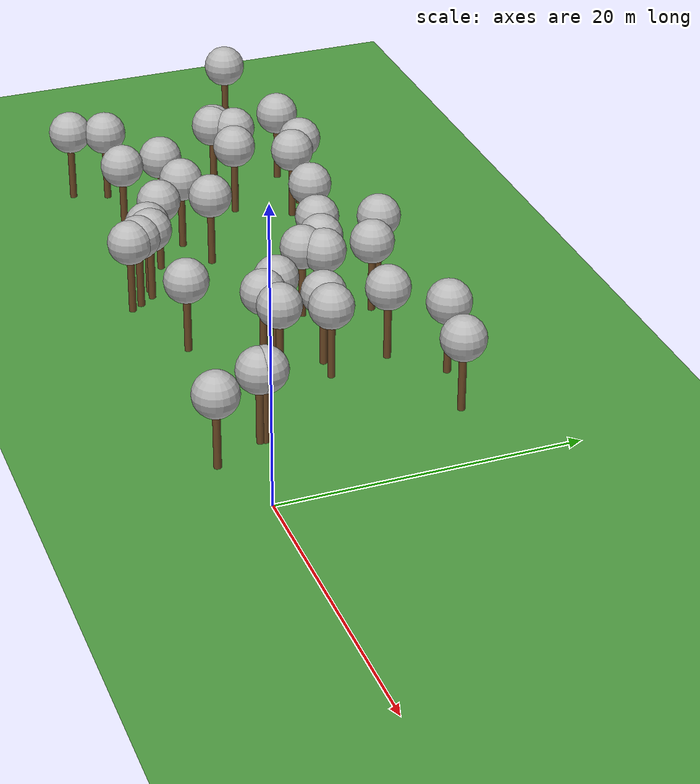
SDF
<sdf version="1.5">
 <world name="default">
  <model name="tree_simple498">
   <static>1</static>
   <link name="link">
    <pose>0 0 0.1 0 -0 0</pose>
    <collision name="collision_trunk">
     <pose>0 0 2 0 -0 0</pose>
     <geometry><cylinder><radius>0.25</radius><length>4</length></cylinder></geometry>
    </collision>
    <collision name="collision_treetop">
     <pose>0 0 5.2 0 -0 0</pose>
     <geometry><sphere><radius>1.5</radius></sphere></geometry>
    </collision>
    <visual name="trunk">
     <pose>0 0 2 0 -0 0</pose>
     <geometry><cylinder><radius>0.25</radius><length>4</length></cylinder></geometry>
     <material>
      <script>
       <uri>model://tree_simple/scripts</uri>
       <uri>model://tree_simple/materials/textures</uri>
       <name>TreeSimple/Trunk</name>
      </script>
     </material>
    </visual>
    <visual name="treetop">
     <pose>0 0 5.2 0 -0 0</pose>
     <geometry><sphere><radius>1.5</radius></sphere></geometry>
     <material>
      <script>
       <uri>model://tree_simple/scripts</uri>
       <uri>model://tree_simple/materials/textures</uri>
       <name>TreeSimple/Treetop</name>
      </script>
     </material>
    </visual>
   </link>
   <pose>-20.062069779 9.09254194943 0 0 -0 0</pose>
  </model>
  <model name="tree_simple488">
   <static>1</static>
   <link name="link">
    <pose>0 0 0.1 0 -0 0</pose>
    <collision name="collision_trunk">
     <pose>0 0 2 0 -0 0</pose>
     <geometry><cylinder><radius>0.25</radius><length>4</length></cylinder></geometry>
    </collision>
    <collision name="collision_treetop">
     <pose>0 0 5.2 0 -0 0</pose>
     <geometry><sphere><radius>1.5</radius></sphere></geometry>
    </collision>
    <visual name="trunk">
     <pose>0 0 2 0 -0 0</pose>
     <geometry><cylinder><radius>0.25</radius><length>4</length></cylinder></geometry>
     <material>
      <script>
       <uri>model://tree_simple/scripts</uri>
       <uri>model://tree_simple/materials/textures</uri>
       <name>TreeSimple/Trunk</name>
      </script>
     </material>
    </visual>
    <visual name="treetop">
     <pose>0 0 5.2 0 -0 0</pose>
     <geometry><sphere><radius>1.5</radius></sphere></geometry>
     <material>
      <script>
       <uri>model://tree_simple/scripts</uri>
       <uri>model://tree_simple/materials/textures</uri>
       <name>TreeSimple/Treetop</name>
      </script>
     </material>
    </visual>
   </link>
   <pose>-13.1215818691 12.435953241 0 0 -0 0</pose>
  </model>
  <model name="tree_simple460">
   <static>1</static>
   <link name="link">
    <pose>0 0 0.1 0 -0 0</pose>
    <collision name="collision_trunk">
     <pose>0 0 2 0 -0 0</pose>
     <geometry><cylinder><radius>0.25</radius><length>4</length></cylinder></geometry>
    </collision>
    <collision name="collision_treetop">
     <pose>0 0 5.2 0 -0 0</pose>
     <geometry><sphere><radius>1.5</radius></sphere></geometry>
    </collision>
    <visual name="trunk">
     <pose>0 0 2 0 -0 0</pose>
     <geometry><cylinder><radius>0.25</radius><length>4</length></cylinder></geometry>
     <material>
      <script>
       <uri>model://tree_simple/scripts</uri>
       <uri>model://tree_simple/materials/textures</uri>
       <name>TreeSimple/Trunk</name>
      </script>
     </material>
    </visual>
    <visual name="treetop">
     <pose>0 0 5.2 0 -0 0</pose>
     <geometry><sphere><radius>1.5</radius></sphere></geometry>
     <material>
      <script>
       <uri>model://tree_simple/scripts</uri>
       <uri>model://tree_simple/materials/textures</uri>
       <name>TreeSimple/Treetop</name>
      </script>
     </material>
    </visual>
   </link>
   <pose>-19.1263542494 10.273291852 0 0 -0 0</pose>
  </model>
  <model name="tree_simple455">
   <static>1</static>
   <link name="link">
    <pose>0 0 0.1 0 -0 0</pose>
    <collision name="collision_trunk">
     <pose>0 0 2 0 -0 0</pose>
     <geometry><cylinder><radius>0.25</radius><length>4</length></cylinder></geometry>
    </collision>
    <collision name="collision_treetop">
     <pose>0 0 5.2 0 -0 0</pose>
     <geometry><sphere><radius>1.5</radius></sphere></geometry>
    </collision>
    <visual name="trunk">
     <pose>0 0 2 0 -0 0</pose>
     <geometry><cylinder><radius>0.25</radius><length>4</length></cylinder></geometry>
     <material>
      <script>
       <uri>model://tree_simple/scripts</uri>
       <uri>model://tree_simple/materials/textures</uri>
       <name>TreeSimple/Trunk</name>
      </script>
     </material>
    </visual>
    <visual name="treetop">
     <pose>0 0 5.2 0 -0 0</pose>
     <geometry><sphere><radius>1.5</radius></sphere></geometry>
     <material>
      <script>
       <uri>model://tree_simple/scripts</uri>
       <uri>model://tree_simple/materials/textures</uri>
       <name>TreeSimple/Treetop</name>
      </script>
     </material>
    </visual>
   </link>
   <pose>-32.1346913749 4.45623468988 0 0 -0 0</pose>
  </model>
  <model name="tree_simple453">
   <static>1</static>
   <link name="link">
    <pose>0 0 0.1 0 -0 0</pose>
    <collision name="collision_trunk">
     <pose>0 0 2 0 -0 0</pose>
     <geometry><cylinder><radius>0.25</radius><length>4</length></cylinder></geometry>
    </collision>
    <collision name="collision_treetop">
     <pose>0 0 5.2 0 -0 0</pose>
     <geometry><sphere><radius>1.5</radius></sphere></geometry>
    </collision>
    <visual name="trunk">
     <pose>0 0 2 0 -0 0</pose>
     <geometry><cylinder><radius>0.25</radius><length>4</length></cylinder></geometry>
     <material>
      <script>
       <uri>model://tree_simple/scripts</uri>
       <uri>model://tree_simple/materials/textures</uri>
       <name>TreeSimple/Trunk</name>
      </script>
     </material>
    </visual>
    <visual name="treetop">
     <pose>0 0 5.2 0 -0 0</pose>
     <geometry><sphere><radius>1.5</radius></sphere></geometry>
     <material>
      <script>
       <uri>model://tree_simple/scripts</uri>
       <uri>model://tree_simple/materials/textures</uri>
       <name>TreeSimple/Treetop</name>
      </script>
     </material>
    </visual>
   </link>
   <pose>-12.135251061 8.19022164755 0 0 -0 0</pose>
  </model>
  <model name="tree_simple448">
   <static>1</static>
   <link name="link">
    <pose>0 0 0.1 0 -0 0</pose>
    <collision name="collision_trunk">
     <pose>0 0 2 0 -0 0</pose>
     <geometry><cylinder><radius>0.25</radius><length>4</length></cylinder></geometry>
    </collision>
    <collision name="collision_treetop">
     <pose>0 0 5.2 0 -0 0</pose>
     <geometry><sphere><radius>1.5</radius></sphere></geometry>
    </collision>
    <visual name="trunk">
     <pose>0 0 2 0 -0 0</pose>
     <geometry><cylinder><radius>0.25</radius><length>4</length></cylinder></geometry>
     <material>
      <script>
       <uri>model://tree_simple/scripts</uri>
       <uri>model://tree_simple/materials/textures</uri>
       <name>TreeSimple/Trunk</name>
      </script>
     </material>
    </visual>
    <visual name="treetop">
     <pose>0 0 5.2 0 -0 0</pose>
     <geometry><sphere><radius>1.5</radius></sphere></geometry>
     <material>
      <script>
       <uri>model://tree_simple/scripts</uri>
       <uri>model://tree_simple/materials/textures</uri>
       <name>TreeSimple/Treetop</name>
      </script>
     </material>
    </visual>
   </link>
   <pose>-24.5519753109 -1.42546954192 0 0 -0 0</pose>
  </model>
  <model name="tree_simple444">
   <static>1</static>
   <link name="link">
    <pose>0 0 0.1 0 -0 0</pose>
    <collision name="collision_trunk">
     <pose>0 0 2 0 -0 0</pose>
     <geometry><cylinder><radius>0.25</radius><length>4</length></cylinder></geometry>
    </collision>
    <collision name="collision_treetop">
     <pose>0 0 5.2 0 -0 0</pose>
     <geometry><sphere><radius>1.5</radius></sphere></geometry>
    </collision>
    <visual name="trunk">
     <pose>0 0 2 0 -0 0</pose>
     <geometry><cylinder><radius>0.25</radius><length>4</length></cylinder></geometry>
     <material>
      <script>
       <uri>model://tree_simple/scripts</uri>
       <uri>model://tree_simple/materials/textures</uri>
       <name>TreeSimple/Trunk</name>
      </script>
     </material>
    </visual>
    <visual name="treetop">
     <pose>0 0 5.2 0 -0 0</pose>
     <geometry><sphere><radius>1.5</radius></sphere></geometry>
     <material>
      <script>
       <uri>model://tree_simple/scripts</uri>
       <uri>model://tree_simple/materials/textures</uri>
       <name>TreeSimple/Treetop</name>
      </script>
     </material>
    </visual>
   </link>
   <pose>-23.7375888222 11.4825776361 0 0 -0 0</pose>
  </model>
  <model name="tree_simple437">
   <static>1</static>
   <link name="link">
    <pose>0 0 0.1 0 -0 0</pose>
    <collision name="collision_trunk">
     <pose>0 0 2 0 -0 0</pose>
     <geometry><cylinder><radius>0.25</radius><length>4</length></cylinder></geometry>
    </collision>
    <collision name="collision_treetop">
     <pose>0 0 5.2 0 -0 0</pose>
     <geometry><sphere><radius>1.5</radius></sphere></geometry>
    </collision>
    <visual name="trunk">
     <pose>0 0 2 0 -0 0</pose>
     <geometry><cylinder><radius>0.25</radius><length>4</length></cylinder></geometry>
     <material>
      <script>
       <uri>model://tree_simple/scripts</uri>
       <uri>model://tree_simple/materials/textures</uri>
       <name>TreeSimple/Trunk</name>
      </script>
     </material>
    </visual>
    <visual name="treetop">
     <pose>0 0 5.2 0 -0 0</pose>
     <geometry><sphere><radius>1.5</radius></sphere></geometry>
     <material>
      <script>
       <uri>model://tree_simple/scripts</uri>
       <uri>model://tree_simple/materials/textures</uri>
       <name>TreeSimple/Treetop</name>
      </script>
     </material>
    </visual>
   </link>
   <pose>-39.7170299969 9.24665194356 0 0 -0 0</pose>
  </model>
  <model name="tree_simple424">
   <static>1</static>
   <link name="link">
    <pose>0 0 0.1 0 -0 0</pose>
    <collision name="collision_trunk">
     <pose>0 0 2 0 -0 0</pose>
     <geometry><cylinder><radius>0.25</radius><length>4</length></cylinder></geometry>
    </collision>
    <collision name="collision_treetop">
     <pose>0 0 5.2 0 -0 0</pose>
     <geometry><sphere><radius>1.5</radius></sphere></geometry>
    </collision>
    <visual name="trunk">
     <pose>0 0 2 0 -0 0</pose>
     <geometry><cylinder><radius>0.25</radius><length>4</length></cylinder></geometry>
     <material>
      <script>
       <uri>model://tree_simple/scripts</uri>
       <uri>model://tree_simple/materials/textures</uri>
       <name>TreeSimple/Trunk</name>
      </script>
     </material>
    </visual>
    <visual name="treetop">
     <pose>0 0 5.2 0 -0 0</pose>
     <geometry><sphere><radius>1.5</radius></sphere></geometry>
     <material>
      <script>
       <uri>model://tree_simple/scripts</uri>
       <uri>model://tree_simple/materials/textures</uri>
       <name>TreeSimple/Treetop</name>
      </script>
     </material>
    </visual>
   </link>
   <pose>-16.7770993139 6.12178979124 0 0 -0 0</pose>
  </model>
  <model name="tree_simple393">
   <static>1</static>
   <link name="link">
    <pose>0 0 0.1 0 -0 0</pose>
    <collision name="collision_trunk">
     <pose>0 0 2 0 -0 0</pose>
     <geometry><cylinder><radius>0.25</radius><length>4</length></cylinder></geometry>
    </collision>
    <collision name="collision_treetop">
     <pose>0 0 5.2 0 -0 0</pose>
     <geometry><sphere><radius>1.5</radius></sphere></geometry>
    </collision>
    <visual name="trunk">
     <pose>0 0 2 0 -0 0</pose>
     <geometry><cylinder><radius>0.25</radius><length>4</length></cylinder></geometry>
     <material>
      <script>
       <uri>model://tree_simple/scripts</uri>
       <uri>model://tree_simple/materials/textures</uri>
       <name>TreeSimple/Trunk</name>
      </script>
     </material>
    </visual>
    <visual name="treetop">
     <pose>0 0 5.2 0 -0 0</pose>
     <geometry><sphere><radius>1.5</radius></sphere></geometry>
     <material>
      <script>
       <uri>model://tree_simple/scripts</uri>
       <uri>model://tree_simple/materials/textures</uri>
       <name>TreeSimple/Treetop</name>
      </script>
     </material>
    </visual>
   </link>
   <pose>-19.2161378336 13.717868908 0 0 -0 0</pose>
  </model>
  <model name="tree_simple383">
   <static>1</static>
   <link name="link">
    <pose>0 0 0.1 0 -0 0</pose>
    <collision name="collision_trunk">
     <pose>0 0 2 0 -0 0</pose>
     <geometry><cylinder><radius>0.25</radius><length>4</length></cylinder></geometry>
    </collision>
    <collision name="collision_treetop">
     <pose>0 0 5.2 0 -0 0</pose>
     <geometry><sphere><radius>1.5</radius></sphere></geometry>
    </collision>
    <visual name="trunk">
     <pose>0 0 2 0 -0 0</pose>
     <geometry><cylinder><radius>0.25</radius><length>4</length></cylinder></geometry>
     <material>
      <script>
       <uri>model://tree_simple/scripts</uri>
       <uri>model://tree_simple/materials/textures</uri>
       <name>TreeSimple/Trunk</name>
      </script>
     </material>
    </visual>
    <visual name="treetop">
     <pose>0 0 5.2 0 -0 0</pose>
     <geometry><sphere><radius>1.5</radius></sphere></geometry>
     <material>
      <script>
       <uri>model://tree_simple/scripts</uri>
       <uri>model://tree_simple/materials/textures</uri>
       <name>TreeSimple/Treetop</name>
      </script>
     </material>
    </visual>
   </link>
   <pose>-39.6589333601 9.20891740709 0 0 -0 0</pose>
  </model>
  <model name="tree_simple360">
   <static>1</static>
   <link name="link">
    <pose>0 0 0.1 0 -0 0</pose>
    <collision name="collision_trunk">
     <pose>0 0 2 0 -0 0</pose>
     <geometry><cylinder><radius>0.25</radius><length>4</length></cylinder></geometry>
    </collision>
    <collision name="collision_treetop">
     <pose>0 0 5.2 0 -0 0</pose>
     <geometry><sphere><radius>1.5</radius></sphere></geometry>
    </collision>
    <visual name="trunk">
     <pose>0 0 2 0 -0 0</pose>
     <geometry><cylinder><radius>0.25</radius><length>4</length></cylinder></geometry>
     <material>
      <script>
       <uri>model://tree_simple/scripts</uri>
       <uri>model://tree_simple/materials/textures</uri>
       <name>TreeSimple/Trunk</name>
      </script>
     </material>
    </visual>
    <visual name="treetop">
     <pose>0 0 5.2 0 -0 0</pose>
     <geometry><sphere><radius>1.5</radius></sphere></geometry>
     <material>
      <script>
       <uri>model://tree_simple/scripts</uri>
       <uri>model://tree_simple/materials/textures</uri>
       <name>TreeSimple/Treetop</name>
      </script>
     </material>
    </visual>
   </link>
   <pose>-13.8761955988 8.30702560736 0 0 -0 0</pose>
  </model>
  <model name="tree_simple338">
   <static>1</static>
   <link name="link">
    <pose>0 0 0.1 0 -0 0</pose>
    <collision name="collision_trunk">
     <pose>0 0 2 0 -0 0</pose>
     <geometry><cylinder><radius>0.25</radius><length>4</length></cylinder></geometry>
    </collision>
    <collision name="collision_treetop">
     <pose>0 0 5.2 0 -0 0</pose>
     <geometry><sphere><radius>1.5</radius></sphere></geometry>
    </collision>
    <visual name="trunk">
     <pose>0 0 2 0 -0 0</pose>
     <geometry><cylinder><radius>0.25</radius><length>4</length></cylinder></geometry>
     <material>
      <script>
       <uri>model://tree_simple/scripts</uri>
       <uri>model://tree_simple/materials/textures</uri>
       <name>TreeSimple/Trunk</name>
      </script>
     </material>
    </visual>
    <visual name="treetop">
     <pose>0 0 5.2 0 -0 0</pose>
     <geometry><sphere><radius>1.5</radius></sphere></geometry>
     <material>
      <script>
       <uri>model://tree_simple/scripts</uri>
       <uri>model://tree_simple/materials/textures</uri>
       <name>TreeSimple/Treetop</name>
      </script>
     </material>
    </visual>
   </link>
   <pose>-22.4236352143 15.4465495723 0 0 -0 0</pose>
  </model>
  <model name="tree_simple333">
   <static>1</static>
   <link name="link">
    <pose>0 0 0.1 0 -0 0</pose>
    <collision name="collision_trunk">
     <pose>0 0 2 0 -0 0</pose>
     <geometry><cylinder><radius>0.25</radius><length>4</length></cylinder></geometry>
    </collision>
    <collision name="collision_treetop">
     <pose>0 0 5.2 0 -0 0</pose>
     <geometry><sphere><radius>1.5</radius></sphere></geometry>
    </collision>
    <visual name="trunk">
     <pose>0 0 2 0 -0 0</pose>
     <geometry><cylinder><radius>0.25</radius><length>4</length></cylinder></geometry>
     <material>
      <script>
       <uri>model://tree_simple/scripts</uri>
       <uri>model://tree_simple/materials/textures</uri>
       <name>TreeSimple/Trunk</name>
      </script>
     </material>
    </visual>
    <visual name="treetop">
     <pose>0 0 5.2 0 -0 0</pose>
     <geometry><sphere><radius>1.5</radius></sphere></geometry>
     <material>
      <script>
       <uri>model://tree_simple/scripts</uri>
       <uri>model://tree_simple/materials/textures</uri>
       <name>TreeSimple/Treetop</name>
      </script>
     </material>
    </visual>
   </link>
   <pose>-39.9457212117 14.2708629915 0 0 -0 0</pose>
  </model>
  <model name="tree_simple289">
   <static>1</static>
   <link name="link">
    <pose>0 0 0.1 0 -0 0</pose>
    <collision name="collision_trunk">
     <pose>0 0 2 0 -0 0</pose>
     <geometry><cylinder><radius>0.25</radius><length>4</length></cylinder></geometry>
    </collision>
    <collision name="collision_treetop">
     <pose>0 0 5.2 0 -0 0</pose>
     <geometry><sphere><radius>1.5</radius></sphere></geometry>
    </collision>
    <visual name="trunk">
     <pose>0 0 2 0 -0 0</pose>
     <geometry><cylinder><radius>0.25</radius><length>4</length></cylinder></geometry>
     <material>
      <script>
       <uri>model://tree_simple/scripts</uri>
       <uri>model://tree_simple/materials/textures</uri>
       <name>TreeSimple/Trunk</name>
      </script>
     </material>
    </visual>
    <visual name="treetop">
     <pose>0 0 5.2 0 -0 0</pose>
     <geometry><sphere><radius>1.5</radius></sphere></geometry>
     <material>
      <script>
       <uri>model://tree_simple/scripts</uri>
       <uri>model://tree_simple/materials/textures</uri>
       <name>TreeSimple/Treetop</name>
      </script>
     </material>
    </visual>
   </link>
   <pose>-35.9302757768 4.10324936235 0 0 -0 0</pose>
  </model>
  <model name="tree_simple284">
   <static>1</static>
   <link name="link">
    <pose>0 0 0.1 0 -0 0</pose>
    <collision name="collision_trunk">
     <pose>0 0 2 0 -0 0</pose>
     <geometry><cylinder><radius>0.25</radius><length>4</length></cylinder></geometry>
    </collision>
    <collision name="collision_treetop">
     <pose>0 0 5.2 0 -0 0</pose>
     <geometry><sphere><radius>1.5</radius></sphere></geometry>
    </collision>
    <visual name="trunk">
     <pose>0 0 2 0 -0 0</pose>
     <geometry><cylinder><radius>0.25</radius><length>4</length></cylinder></geometry>
     <material>
      <script>
       <uri>model://tree_simple/scripts</uri>
       <uri>model://tree_simple/materials/textures</uri>
       <name>TreeSimple/Trunk</name>
      </script>
     </material>
    </visual>
    <visual name="treetop">
     <pose>0 0 5.2 0 -0 0</pose>
     <geometry><sphere><radius>1.5</radius></sphere></geometry>
     <material>
      <script>
       <uri>model://tree_simple/scripts</uri>
       <uri>model://tree_simple/materials/textures</uri>
       <name>TreeSimple/Treetop</name>
      </script>
     </material>
    </visual>
   </link>
   <pose>-18.3910783374 0.559962709575 0 0 -0 0</pose>
  </model>
  <model name="tree_simple282">
   <static>1</static>
   <link name="link">
    <pose>0 0 0.1 0 -0 0</pose>
    <collision name="collision_trunk">
     <pose>0 0 2 0 -0 0</pose>
     <geometry><cylinder><radius>0.25</radius><length>4</length></cylinder></geometry>
    </collision>
    <collision name="collision_treetop">
     <pose>0 0 5.2 0 -0 0</pose>
     <geometry><sphere><radius>1.5</radius></sphere></geometry>
    </collision>
    <visual name="trunk">
     <pose>0 0 2 0 -0 0</pose>
     <geometry><cylinder><radius>0.25</radius><length>4</length></cylinder></geometry>
     <material>
      <script>
       <uri>model://tree_simple/scripts</uri>
       <uri>model://tree_simple/materials/textures</uri>
       <name>TreeSimple/Trunk</name>
      </script>
     </material>
    </visual>
    <visual name="treetop">
     <pose>0 0 5.2 0 -0 0</pose>
     <geometry><sphere><radius>1.5</radius></sphere></geometry>
     <material>
      <script>
       <uri>model://tree_simple/scripts</uri>
       <uri>model://tree_simple/materials/textures</uri>
       <name>TreeSimple/Treetop</name>
      </script>
     </material>
    </visual>
   </link>
   <pose>-10.116665752 15.3935200089 0 0 -0 0</pose>
  </model>
  <model name="tree_simple279">
   <static>1</static>
   <link name="link">
    <pose>0 0 0.1 0 -0 0</pose>
    <collision name="collision_trunk">
     <pose>0 0 2 0 -0 0</pose>
     <geometry><cylinder><radius>0.25</radius><length>4</length></cylinder></geometry>
    </collision>
    <collision name="collision_treetop">
     <pose>0 0 5.2 0 -0 0</pose>
     <geometry><sphere><radius>1.5</radius></sphere></geometry>
    </collision>
    <visual name="trunk">
     <pose>0 0 2 0 -0 0</pose>
     <geometry><cylinder><radius>0.25</radius><length>4</length></cylinder></geometry>
     <material>
      <script>
       <uri>model://tree_simple/scripts</uri>
       <uri>model://tree_simple/materials/textures</uri>
       <name>TreeSimple/Trunk</name>
      </script>
     </material>
    </visual>
    <visual name="treetop">
     <pose>0 0 5.2 0 -0 0</pose>
     <geometry><sphere><radius>1.5</radius></sphere></geometry>
     <material>
      <script>
       <uri>model://tree_simple/scripts</uri>
       <uri>model://tree_simple/materials/textures</uri>
       <name>TreeSimple/Treetop</name>
      </script>
     </material>
    </visual>
   </link>
   <pose>-25.0449823603 -0.682470499347 0 0 -0 0</pose>
  </model>
  <model name="tree_simple252">
   <static>1</static>
   <link name="link">
    <pose>0 0 0.1 0 -0 0</pose>
    <collision name="collision_trunk">
     <pose>0 0 2 0 -0 0</pose>
     <geometry><cylinder><radius>0.25</radius><length>4</length></cylinder></geometry>
    </collision>
    <collision name="collision_treetop">
     <pose>0 0 5.2 0 -0 0</pose>
     <geometry><sphere><radius>1.5</radius></sphere></geometry>
    </collision>
    <visual name="trunk">
     <pose>0 0 2 0 -0 0</pose>
     <geometry><cylinder><radius>0.25</radius><length>4</length></cylinder></geometry>
     <material>
      <script>
       <uri>model://tree_simple/scripts</uri>
       <uri>model://tree_simple/materials/textures</uri>
       <name>TreeSimple/Trunk</name>
      </script>
     </material>
    </visual>
    <visual name="treetop">
     <pose>0 0 5.2 0 -0 0</pose>
     <geometry><sphere><radius>1.5</radius></sphere></geometry>
     <material>
      <script>
       <uri>model://tree_simple/scripts</uri>
       <uri>model://tree_simple/materials/textures</uri>
       <name>TreeSimple/Treetop</name>
      </script>
     </material>
    </visual>
   </link>
   <pose>-49.2857495086 13.2768548842 0 0 -0 0</pose>
  </model>
  <model name="tree_simple245">
   <static>1</static>
   <link name="link">
    <pose>0 0 0.1 0 -0 0</pose>
    <collision name="collision_trunk">
     <pose>0 0 2 0 -0 0</pose>
     <geometry><cylinder><radius>0.25</radius><length>4</length></cylinder></geometry>
    </collision>
    <collision name="collision_treetop">
     <pose>0 0 5.2 0 -0 0</pose>
     <geometry><sphere><radius>1.5</radius></sphere></geometry>
    </collision>
    <visual name="trunk">
     <pose>0 0 2 0 -0 0</pose>
     <geometry><cylinder><radius>0.25</radius><length>4</length></cylinder></geometry>
     <material>
      <script>
       <uri>model://tree_simple/scripts</uri>
       <uri>model://tree_simple/materials/textures</uri>
       <name>TreeSimple/Trunk</name>
      </script>
     </material>
    </visual>
    <visual name="treetop">
     <pose>0 0 5.2 0 -0 0</pose>
     <geometry><sphere><radius>1.5</radius></sphere></geometry>
     <material>
      <script>
       <uri>model://tree_simple/scripts</uri>
       <uri>model://tree_simple/materials/textures</uri>
       <name>TreeSimple/Treetop</name>
      </script>
     </material>
    </visual>
   </link>
   <pose>-25.7973722527 0.315231770046 0 0 -0 0</pose>
  </model>
  <model name="tree_simple231">
   <static>1</static>
   <link name="link">
    <pose>0 0 0.1 0 -0 0</pose>
    <collision name="collision_trunk">
     <pose>0 0 2 0 -0 0</pose>
     <geometry><cylinder><radius>0.25</radius><length>4</length></cylinder></geometry>
    </collision>
    <collision name="collision_treetop">
     <pose>0 0 5.2 0 -0 0</pose>
     <geometry><sphere><radius>1.5</radius></sphere></geometry>
    </collision>
    <visual name="trunk">
     <pose>0 0 2 0 -0 0</pose>
     <geometry><cylinder><radius>0.25</radius><length>4</length></cylinder></geometry>
     <material>
      <script>
       <uri>model://tree_simple/scripts</uri>
       <uri>model://tree_simple/materials/textures</uri>
       <name>TreeSimple/Trunk</name>
      </script>
     </material>
    </visual>
    <visual name="treetop">
     <pose>0 0 5.2 0 -0 0</pose>
     <geometry><sphere><radius>1.5</radius></sphere></geometry>
     <material>
      <script>
       <uri>model://tree_simple/scripts</uri>
       <uri>model://tree_simple/materials/textures</uri>
       <name>TreeSimple/Treetop</name>
      </script>
     </material>
    </visual>
   </link>
   <pose>-35.8338732543 9.59486776234 0 0 -0 0</pose>
  </model>
  <model name="tree_simple228">
   <static>1</static>
   <link name="link">
    <pose>0 0 0.1 0 -0 0</pose>
    <collision name="collision_trunk">
     <pose>0 0 2 0 -0 0</pose>
     <geometry><cylinder><radius>0.25</radius><length>4</length></cylinder></geometry>
    </collision>
    <collision name="collision_treetop">
     <pose>0 0 5.2 0 -0 0</pose>
     <geometry><sphere><radius>1.5</radius></sphere></geometry>
    </collision>
    <visual name="trunk">
     <pose>0 0 2 0 -0 0</pose>
     <geometry><cylinder><radius>0.25</radius><length>4</length></cylinder></geometry>
     <material>
      <script>
       <uri>model://tree_simple/scripts</uri>
       <uri>model://tree_simple/materials/textures</uri>
       <name>TreeSimple/Trunk</name>
      </script>
     </material>
    </visual>
    <visual name="treetop">
     <pose>0 0 5.2 0 -0 0</pose>
     <geometry><sphere><radius>1.5</radius></sphere></geometry>
     <material>
      <script>
       <uri>model://tree_simple/scripts</uri>
       <uri>model://tree_simple/materials/textures</uri>
       <name>TreeSimple/Treetop</name>
      </script>
     </material>
    </visual>
   </link>
   <pose>-28.4416918888 12.679152397 0 0 -0 0</pose>
  </model>
  <model name="tree_simple226">
   <static>1</static>
   <link name="link">
    <pose>0 0 0.1 0 -0 0</pose>
    <collision name="collision_trunk">
     <pose>0 0 2 0 -0 0</pose>
     <geometry><cylinder><radius>0.25</radius><length>4</length></cylinder></geometry>
    </collision>
    <collision name="collision_treetop">
     <pose>0 0 5.2 0 -0 0</pose>
     <geometry><sphere><radius>1.5</radius></sphere></geometry>
    </collision>
    <visual name="trunk">
     <pose>0 0 2 0 -0 0</pose>
     <geometry><cylinder><radius>0.25</radius><length>4</length></cylinder></geometry>
     <material>
      <script>
       <uri>model://tree_simple/scripts</uri>
       <uri>model://tree_simple/materials/textures</uri>
       <name>TreeSimple/Trunk</name>
      </script>
     </material>
    </visual>
    <visual name="treetop">
     <pose>0 0 5.2 0 -0 0</pose>
     <geometry><sphere><radius>1.5</radius></sphere></geometry>
     <material>
      <script>
       <uri>model://tree_simple/scripts</uri>
       <uri>model://tree_simple/materials/textures</uri>
       <name>TreeSimple/Treetop</name>
      </script>
     </material>
    </visual>
   </link>
   <pose>-15.3498793375 4.7340721764 0 0 -0 0</pose>
  </model>
  <model name="tree_simple218">
   <static>1</static>
   <link name="link">
    <pose>0 0 0.1 0 -0 0</pose>
    <collision name="collision_trunk">
     <pose>0 0 2 0 -0 0</pose>
     <geometry><cylinder><radius>0.25</radius><length>4</length></cylinder></geometry>
    </collision>
    <collision name="collision_treetop">
     <pose>0 0 5.2 0 -0 0</pose>
     <geometry><sphere><radius>1.5</radius></sphere></geometry>
    </collision>
    <visual name="trunk">
     <pose>0 0 2 0 -0 0</pose>
     <geometry><cylinder><radius>0.25</radius><length>4</length></cylinder></geometry>
     <material>
      <script>
       <uri>model://tree_simple/scripts</uri>
       <uri>model://tree_simple/materials/textures</uri>
       <name>TreeSimple/Trunk</name>
      </script>
     </material>
    </visual>
    <visual name="treetop">
     <pose>0 0 5.2 0 -0 0</pose>
     <geometry><sphere><radius>1.5</radius></sphere></geometry>
     <material>
      <script>
       <uri>model://tree_simple/scripts</uri>
       <uri>model://tree_simple/materials/textures</uri>
       <name>TreeSimple/Treetop</name>
      </script>
     </material>
    </visual>
   </link>
   <pose>-35.4441673734 14.4296379782 0 0 -0 0</pose>
  </model>
  <model name="tree_simple209">
   <static>1</static>
   <link name="link">
    <pose>0 0 0.1 0 -0 0</pose>
    <collision name="collision_trunk">
     <pose>0 0 2 0 -0 0</pose>
     <geometry><cylinder><radius>0.25</radius><length>4</length></cylinder></geometry>
    </collision>
    <collision name="collision_treetop">
     <pose>0 0 5.2 0 -0 0</pose>
     <geometry><sphere><radius>1.5</radius></sphere></geometry>
    </collision>
    <visual name="trunk">
     <pose>0 0 2 0 -0 0</pose>
     <geometry><cylinder><radius>0.25</radius><length>4</length></cylinder></geometry>
     <material>
      <script>
       <uri>model://tree_simple/scripts</uri>
       <uri>model://tree_simple/materials/textures</uri>
       <name>TreeSimple/Trunk</name>
      </script>
     </material>
    </visual>
    <visual name="treetop">
     <pose>0 0 5.2 0 -0 0</pose>
     <geometry><sphere><radius>1.5</radius></sphere></geometry>
     <material>
      <script>
       <uri>model://tree_simple/scripts</uri>
       <uri>model://tree_simple/materials/textures</uri>
       <name>TreeSimple/Treetop</name>
      </script>
     </material>
    </visual>
   </link>
   <pose>-33.8233046725 13.2827932197 0 0 -0 0</pose>
  </model>
  <model name="tree_simple199">
   <static>1</static>
   <link name="link">
    <pose>0 0 0.1 0 -0 0</pose>
    <collision name="collision_trunk">
     <pose>0 0 2 0 -0 0</pose>
     <geometry><cylinder><radius>0.25</radius><length>4</length></cylinder></geometry>
    </collision>
    <collision name="collision_treetop">
     <pose>0 0 5.2 0 -0 0</pose>
     <geometry><sphere><radius>1.5</radius></sphere></geometry>
    </collision>
    <visual name="trunk">
     <pose>0 0 2 0 -0 0</pose>
     <geometry><cylinder><radius>0.25</radius><length>4</length></cylinder></geometry>
     <material>
      <script>
       <uri>model://tree_simple/scripts</uri>
       <uri>model://tree_simple/materials/textures</uri>
       <name>TreeSimple/Trunk</name>
      </script>
     </material>
    </visual>
    <visual name="treetop">
     <pose>0 0 5.2 0 -0 0</pose>
     <geometry><sphere><radius>1.5</radius></sphere></geometry>
     <material>
      <script>
       <uri>model://tree_simple/scripts</uri>
       <uri>model://tree_simple/materials/textures</uri>
       <name>TreeSimple/Treetop</name>
      </script>
     </material>
    </visual>
   </link>
   <pose>-38.6601694544 10.5136228042 0 0 -0 0</pose>
  </model>
  <model name="tree_simple187">
   <static>1</static>
   <link name="link">
    <pose>0 0 0.1 0 -0 0</pose>
    <collision name="collision_trunk">
     <pose>0 0 2 0 -0 0</pose>
     <geometry><cylinder><radius>0.25</radius><length>4</length></cylinder></geometry>
    </collision>
    <collision name="collision_treetop">
     <pose>0 0 5.2 0 -0 0</pose>
     <geometry><sphere><radius>1.5</radius></sphere></geometry>
    </collision>
    <visual name="trunk">
     <pose>0 0 2 0 -0 0</pose>
     <geometry><cylinder><radius>0.25</radius><length>4</length></cylinder></geometry>
     <material>
      <script>
       <uri>model://tree_simple/scripts</uri>
       <uri>model://tree_simple/materials/textures</uri>
       <name>TreeSimple/Trunk</name>
      </script>
     </material>
    </visual>
    <visual name="treetop">
     <pose>0 0 5.2 0 -0 0</pose>
     <geometry><sphere><radius>1.5</radius></sphere></geometry>
     <material>
      <script>
       <uri>model://tree_simple/scripts</uri>
       <uri>model://tree_simple/materials/textures</uri>
       <name>TreeSimple/Treetop</name>
      </script>
     </material>
    </visual>
   </link>
   <pose>-6.45553635196 1.79140972094 0 0 -0 0</pose>
  </model>
  <model name="tree_simple165">
   <static>1</static>
   <link name="link">
    <pose>0 0 0.1 0 -0 0</pose>
    <collision name="collision_trunk">
     <pose>0 0 2 0 -0 0</pose>
     <geometry><cylinder><radius>0.25</radius><length>4</length></cylinder></geometry>
    </collision>
    <collision name="collision_treetop">
     <pose>0 0 5.2 0 -0 0</pose>
     <geometry><sphere><radius>1.5</radius></sphere></geometry>
    </collision>
    <visual name="trunk">
     <pose>0 0 2 0 -0 0</pose>
     <geometry><cylinder><radius>0.25</radius><length>4</length></cylinder></geometry>
     <material>
      <script>
       <uri>model://tree_simple/scripts</uri>
       <uri>model://tree_simple/materials/textures</uri>
       <name>TreeSimple/Trunk</name>
      </script>
     </material>
    </visual>
    <visual name="treetop">
     <pose>0 0 5.2 0 -0 0</pose>
     <geometry><sphere><radius>1.5</radius></sphere></geometry>
     <material>
      <script>
       <uri>model://tree_simple/scripts</uri>
       <uri>model://tree_simple/materials/textures</uri>
       <name>TreeSimple/Treetop</name>
      </script>
     </material>
    </visual>
   </link>
   <pose>-6.476660544 1.43780692284 0 0 -0 0</pose>
  </model>
  <model name="tree_simple163">
   <static>1</static>
   <link name="link">
    <pose>0 0 0.1 0 -0 0</pose>
    <collision name="collision_trunk">
     <pose>0 0 2 0 -0 0</pose>
     <geometry><cylinder><radius>0.25</radius><length>4</length></cylinder></geometry>
    </collision>
    <collision name="collision_treetop">
     <pose>0 0 5.2 0 -0 0</pose>
     <geometry><sphere><radius>1.5</radius></sphere></geometry>
    </collision>
    <visual name="trunk">
     <pose>0 0 2 0 -0 0</pose>
     <geometry><cylinder><radius>0.25</radius><length>4</length></cylinder></geometry>
     <material>
      <script>
       <uri>model://tree_simple/scripts</uri>
       <uri>model://tree_simple/materials/textures</uri>
       <name>TreeSimple/Trunk</name>
      </script>
     </material>
    </visual>
    <visual name="treetop">
     <pose>0 0 5.2 0 -0 0</pose>
     <geometry><sphere><radius>1.5</radius></sphere></geometry>
     <material>
      <script>
       <uri>model://tree_simple/scripts</uri>
       <uri>model://tree_simple/materials/textures</uri>
       <name>TreeSimple/Treetop</name>
      </script>
     </material>
    </visual>
   </link>
   <pose>-21.1018337127 10.7784018303 0 0 -0 0</pose>
  </model>
  <model name="tree_simple162">
   <static>1</static>
   <link name="link">
    <pose>0 0 0.1 0 -0 0</pose>
    <collision name="collision_trunk">
     <pose>0 0 2 0 -0 0</pose>
     <geometry><cylinder><radius>0.25</radius><length>4</length></cylinder></geometry>
    </collision>
    <collision name="collision_treetop">
     <pose>0 0 5.2 0 -0 0</pose>
     <geometry><sphere><radius>1.5</radius></sphere></geometry>
    </collision>
    <visual name="trunk">
     <pose>0 0 2 0 -0 0</pose>
     <geometry><cylinder><radius>0.25</radius><length>4</length></cylinder></geometry>
     <material>
      <script>
       <uri>model://tree_simple/scripts</uri>
       <uri>model://tree_simple/materials/textures</uri>
       <name>TreeSimple/Trunk</name>
      </script>
     </material>
    </visual>
    <visual name="treetop">
     <pose>0 0 5.2 0 -0 0</pose>
     <geometry><sphere><radius>1.5</radius></sphere></geometry>
     <material>
      <script>
       <uri>model://tree_simple/scripts</uri>
       <uri>model://tree_simple/materials/textures</uri>
       <name>TreeSimple/Treetop</name>
      </script>
     </material>
    </visual>
   </link>
   <pose>-29.0785466271 5.63251358266 0 0 -0 0</pose>
  </model>
  <model name="tree_simple158">
   <static>1</static>
   <link name="link">
    <pose>0 0 0.1 0 -0 0</pose>
    <collision name="collision_trunk">
     <pose>0 0 2 0 -0 0</pose>
     <geometry><cylinder><radius>0.25</radius><length>4</length></cylinder></geometry>
    </collision>
    <collision name="collision_treetop">
     <pose>0 0 5.2 0 -0 0</pose>
     <geometry><sphere><radius>1.5</radius></sphere></geometry>
    </collision>
    <visual name="trunk">
     <pose>0 0 2 0 -0 0</pose>
     <geometry><cylinder><radius>0.25</radius><length>4</length></cylinder></geometry>
     <material>
      <script>
       <uri>model://tree_simple/scripts</uri>
       <uri>model://tree_simple/materials/textures</uri>
       <name>TreeSimple/Trunk</name>
      </script>
     </material>
    </visual>
    <visual name="treetop">
     <pose>0 0 5.2 0 -0 0</pose>
     <geometry><sphere><radius>1.5</radius></sphere></geometry>
     <material>
      <script>
       <uri>model://tree_simple/scripts</uri>
       <uri>model://tree_simple/materials/textures</uri>
       <name>TreeSimple/Treetop</name>
      </script>
     </material>
    </visual>
   </link>
   <pose>-5.6810181288 14.4728525014 0 0 -0 0</pose>
  </model>
  <model name="tree_simple135">
   <static>1</static>
   <link name="link">
    <pose>0 0 0.1 0 -0 0</pose>
    <collision name="collision_trunk">
     <pose>0 0 2 0 -0 0</pose>
     <geometry><cylinder><radius>0.25</radius><length>4</length></cylinder></geometry>
    </collision>
    <collision name="collision_treetop">
     <pose>0 0 5.2 0 -0 0</pose>
     <geometry><sphere><radius>1.5</radius></sphere></geometry>
    </collision>
    <visual name="trunk">
     <pose>0 0 2 0 -0 0</pose>
     <geometry><cylinder><radius>0.25</radius><length>4</length></cylinder></geometry>
     <material>
      <script>
       <uri>model://tree_simple/scripts</uri>
       <uri>model://tree_simple/materials/textures</uri>
       <name>TreeSimple/Trunk</name>
      </script>
     </material>
    </visual>
    <visual name="treetop">
     <pose>0 0 5.2 0 -0 0</pose>
     <geometry><sphere><radius>1.5</radius></sphere></geometry>
     <material>
      <script>
       <uri>model://tree_simple/scripts</uri>
       <uri>model://tree_simple/materials/textures</uri>
       <name>TreeSimple/Treetop</name>
      </script>
     </material>
    </visual>
   </link>
   <pose>-29.5483415339 2.06641345063 0 0 -0 0</pose>
  </model>
  <model name="tree_simple121">
   <static>1</static>
   <link name="link">
    <pose>0 0 0.1 0 -0 0</pose>
    <collision name="collision_trunk">
     <pose>0 0 2 0 -0 0</pose>
     <geometry><cylinder><radius>0.25</radius><length>4</length></cylinder></geometry>
    </collision>
    <collision name="collision_treetop">
     <pose>0 0 5.2 0 -0 0</pose>
     <geometry><sphere><radius>1.5</radius></sphere></geometry>
    </collision>
    <visual name="trunk">
     <pose>0 0 2 0 -0 0</pose>
     <geometry><cylinder><radius>0.25</radius><length>4</length></cylinder></geometry>
     <material>
      <script>
       <uri>model://tree_simple/scripts</uri>
       <uri>model://tree_simple/materials/textures</uri>
       <name>TreeSimple/Trunk</name>
      </script>
     </material>
    </visual>
    <visual name="treetop">
     <pose>0 0 5.2 0 -0 0</pose>
     <geometry><sphere><radius>1.5</radius></sphere></geometry>
     <material>
      <script>
       <uri>model://tree_simple/scripts</uri>
       <uri>model://tree_simple/materials/textures</uri>
       <name>TreeSimple/Treetop</name>
      </script>
     </material>
    </visual>
   </link>
   <pose>-26.6760124136 0.407106369334 0 0 -0 0</pose>
  </model>
  <model name="tree_simple105">
   <static>1</static>
   <link name="link">
    <pose>0 0 0.1 0 -0 0</pose>
    <collision name="collision_trunk">
     <pose>0 0 2 0 -0 0</pose>
     <geometry><cylinder><radius>0.25</radius><length>4</length></cylinder></geometry>
    </collision>
    <collision name="collision_treetop">
     <pose>0 0 5.2 0 -0 0</pose>
     <geometry><sphere><radius>1.5</radius></sphere></geometry>
    </collision>
    <visual name="trunk">
     <pose>0 0 2 0 -0 0</pose>
     <geometry><cylinder><radius>0.25</radius><length>4</length></cylinder></geometry>
     <material>
      <script>
       <uri>model://tree_simple/scripts</uri>
       <uri>model://tree_simple/materials/textures</uri>
       <name>TreeSimple/Trunk</name>
      </script>
     </material>
    </visual>
    <visual name="treetop">
     <pose>0 0 5.2 0 -0 0</pose>
     <geometry><sphere><radius>1.5</radius></sphere></geometry>
     <material>
      <script>
       <uri>model://tree_simple/scripts</uri>
       <uri>model://tree_simple/materials/textures</uri>
       <name>TreeSimple/Treetop</name>
      </script>
     </material>
    </visual>
   </link>
   <pose>-41.1351668554 1.47782508111 0 0 -0 0</pose>
  </model>
  <model name="tree_simple100">
   <static>1</static>
   <link name="link">
    <pose>0 0 0.1 0 -0 0</pose>
    <collision name="collision_trunk">
     <pose>0 0 2 0 -0 0</pose>
     <geometry><cylinder><radius>0.25</radius><length>4</length></cylinder></geometry>
    </collision>
    <collision name="collision_treetop">
     <pose>0 0 5.2 0 -0 0</pose>
     <geometry><sphere><radius>1.5</radius></sphere></geometry>
    </collision>
    <visual name="trunk">
     <pose>0 0 2 0 -0 0</pose>
     <geometry><cylinder><radius>0.25</radius><length>4</length></cylinder></geometry>
     <material>
      <script>
       <uri>model://tree_simple/scripts</uri>
       <uri>model://tree_simple/materials/textures</uri>
       <name>TreeSimple/Trunk</name>
      </script>
     </material>
    </visual>
    <visual name="treetop">
     <pose>0 0 5.2 0 -0 0</pose>
     <geometry><sphere><radius>1.5</radius></sphere></geometry>
     <material>
      <script>
       <uri>model://tree_simple/scripts</uri>
       <uri>model://tree_simple/materials/textures</uri>
       <name>TreeSimple/Treetop</name>
      </script>
     </material>
    </visual>
   </link>
   <pose>-42.0523955646 -0.870595497769 0 0 -0 0</pose>
  </model>
  <model name="tree_simple60">
   <static>1</static>
   <link name="link">
    <pose>0 0 0.1 0 -0 0</pose>
    <collision name="collision_trunk">
     <pose>0 0 2 0 -0 0</pose>
     <geometry><cylinder><radius>0.25</radius><length>4</length></cylinder></geometry>
    </collision>
    <collision name="collision_treetop">
     <pose>0 0 5.2 0 -0 0</pose>
     <geometry><sphere><radius>1.5</radius></sphere></geometry>
    </collision>
    <visual name="trunk">
     <pose>0 0 2 0 -0 0</pose>
     <geometry><cylinder><radius>0.25</radius><length>4</length></cylinder></geometry>
     <material>
      <script>
       <uri>model://tree_simple/scripts</uri>
       <uri>model://tree_simple/materials/textures</uri>
       <name>TreeSimple/Trunk</name>
      </script>
     </material>
    </visual>
    <visual name="treetop">
     <pose>0 0 5.2 0 -0 0</pose>
     <geometry><sphere><radius>1.5</radius></sphere></geometry>
     <material>
      <script>
       <uri>model://tree_simple/scripts</uri>
       <uri>model://tree_simple/materials/textures</uri>
       <name>TreeSimple/Treetop</name>
      </script>
     </material>
    </visual>
   </link>
   <pose>-4.80911013023 -1.85604057601 0 0 -0 0</pose>
  </model>
  <model name="tree_simple30">
   <static>1</static>
   <link name="link">
    <pose>0 0 0.1 0 -0 0</pose>
    <collision name="collision_trunk">
     <pose>0 0 2 0 -0 0</pose>
     <geometry><cylinder><radius>0.25</radius><length>4</length></cylinder></geometry>
    </collision>
    <collision name="collision_treetop">
     <pose>0 0 5.2 0 -0 0</pose>
     <geometry><sphere><radius>1.5</radius></sphere></geometry>
    </collision>
    <visual name="trunk">
     <pose>0 0 2 0 -0 0</pose>
     <geometry><cylinder><radius>0.25</radius><length>4</length></cylinder></geometry>
     <material>
      <script>
       <uri>model://tree_simple/scripts</uri>
       <uri>model://tree_simple/materials/textures</uri>
       <name>TreeSimple/Trunk</name>
      </script>
     </material>
    </visual>
    <visual name="treetop">
     <pose>0 0 5.2 0 -0 0</pose>
     <geometry><sphere><radius>1.5</radius></sphere></geometry>
     <material>
      <script>
       <uri>model://tree_simple/scripts</uri>
       <uri>model://tree_simple/materials/textures</uri>
       <name>TreeSimple/Treetop</name>
      </script>
     </material>
    </visual>
   </link>
   <pose>-35.5727327485 1.19199426463 0 0 -0 0</pose>
  </model>
  <model name="tree_simple21">
   <static>1</static>
   <link name="link">
    <pose>0 0 0.1 0 -0 0</pose>
    <collision name="collision_trunk">
     <pose>0 0 2 0 -0 0</pose>
     <geometry><cylinder><radius>0.25</radius><length>4</length></cylinder></geometry>
    </collision>
    <collision name="collision_treetop">
     <pose>0 0 5.2 0 -0 0</pose>
     <geometry><sphere><radius>1.5</radius></sphere></geometry>
    </collision>
    <visual name="trunk">
     <pose>0 0 2 0 -0 0</pose>
     <geometry><cylinder><radius>0.25</radius><length>4</length></cylinder></geometry>
     <material>
      <script>
       <uri>model://tree_simple/scripts</uri>
       <uri>model://tree_simple/materials/textures</uri>
       <name>TreeSimple/Trunk</name>
      </script>
     </material>
    </visual>
    <visual name="treetop">
     <pose>0 0 5.2 0 -0 0</pose>
     <geometry><sphere><radius>1.5</radius></sphere></geometry>
     <material>
      <script>
       <uri>model://tree_simple/scripts</uri>
       <uri>model://tree_simple/materials/textures</uri>
       <name>TreeSimple/Treetop</name>
      </script>
     </material>
    </visual>
   </link>
   <pose>-13.3304563305 5.13608108551 0 0 -0 0</pose>
  </model>
  <model name="ground_plane">
   <static>true</static>
   <link name="link">
    <collision name="collision">
     <geometry><plane><normal>0 0 1</normal><size>250 250</size></plane></geometry>
     <surface><friction><ode><mu>100</mu><mu2>50</mu2></ode></friction></surface>
    </collision>
    <visual name="grass">
     <cast_shadows>false</cast_shadows>
     <geometry><plane><normal>0 0 1</normal><size>150 250</size></plane></geometry>
     <material>
      <script><uri>file://media/materials/scripts/gazebo.material</uri><name>Gazebo/Grass</name></script>
     </material>
    </visual>
   </link>
  </model>
 </world>
</sdf>
